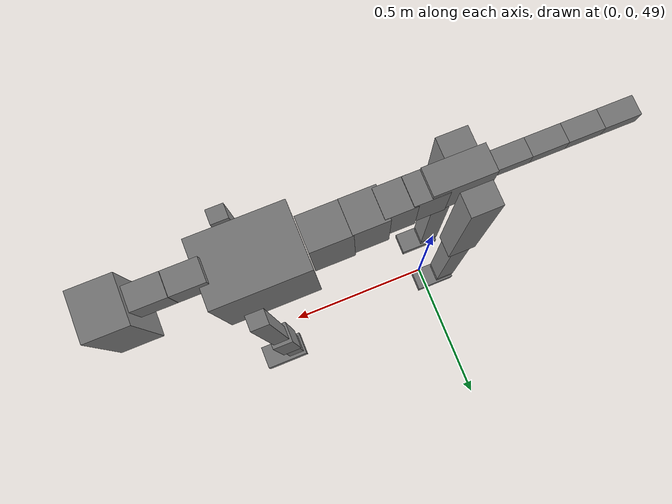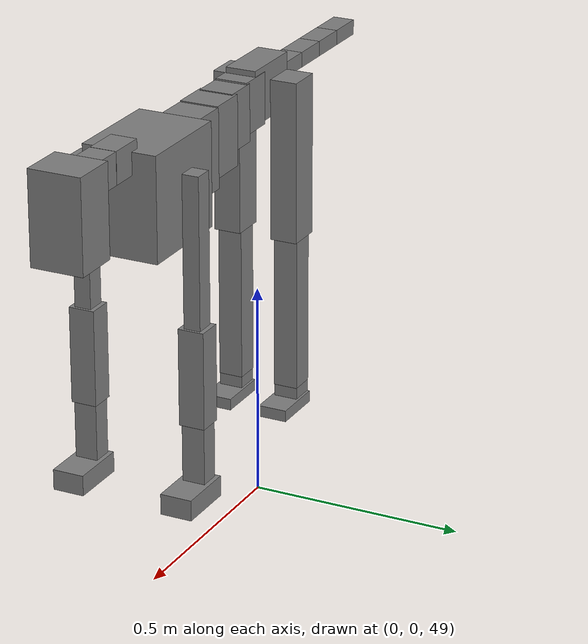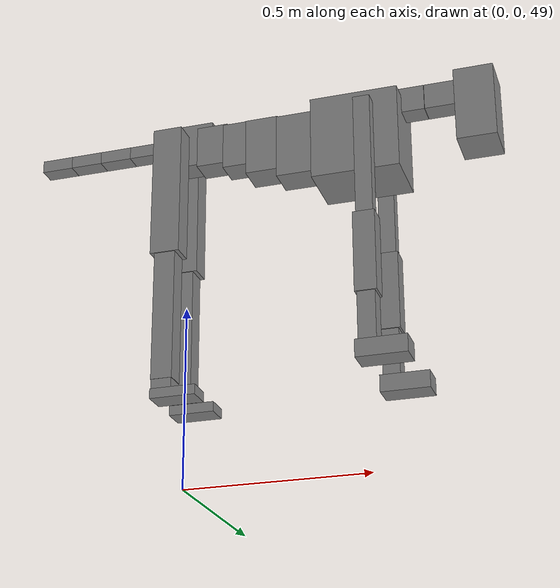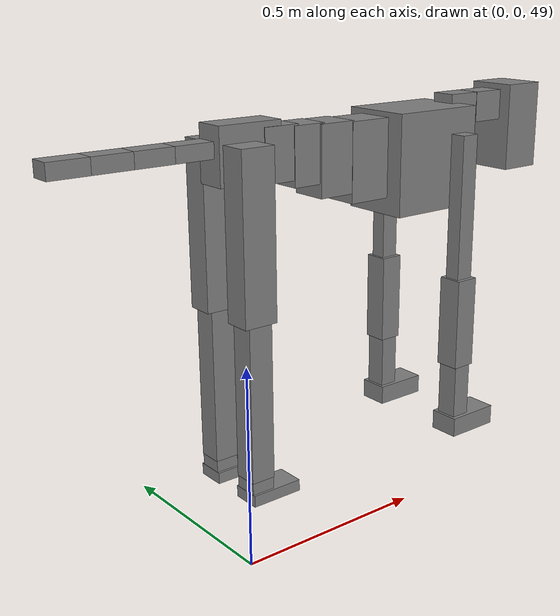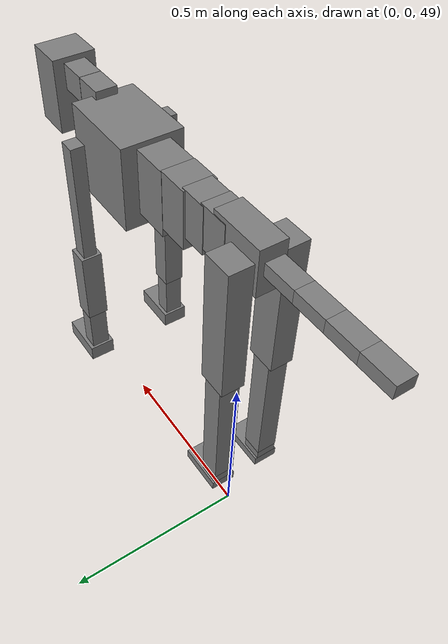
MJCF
<mujoco model="dog">

    <default>
        <joint armature="0.02" stiffness="1" damping="0.2" limited="true"/>
        <geom condim="3" friction="1 0.05 0.05" margin="0.01"/>
        <motor ctrllimited="true" ctrlrange="-1.0 1.0" forcelimited="true" gear="50"/>
    </default>

    <compiler inertiafromgeom="true" angle="radian"/>

    <option timestep="0.016" iterations="50" tolerance="1e-10" solver="Newton" jacobian="dense" cone="pyramidal"/>

    <size nconmax="20000" njmax="60000" nstack="5000000"/>
    <visual>
        <map force="0.1" zfar="30"/>
        <rgba haze="0.15 0.25 0.35 1"/>
        <quality shadowsize="2048"/>
        <global offwidth="800" offheight="800"/>
    </visual>

    <asset>
        <texture type="skybox" builtin="gradient" rgb1="0.3 0.5 0.7" rgb2="0 0 0" width="512" height="512"/>
        <texture name="texplane" type="2d" builtin="checker" rgb1=".2 .3 .4" rgb2=".1 0.15 0.2" width="512" height="512"
                 mark="cross" markrgb=".8 .8 .8"/>
        <texture name="texgeom" type="cube" builtin="flat" mark="cross" width="127" height="1278" rgb1="0.8 0.6 0.4"
                 rgb2="0.8 0.6 0.4" markrgb="1 1 1" random="0.01"/>

        <material name="matplane" reflectance="0.3" texture="texplane" texrepeat="1 1" texuniform="true"/>
        <material name="matgeom" texture="texgeom" texuniform="true" rgba="0.8 0.6 .4 1"/>
    </asset>

    <worldbody>
        <geom name="floor" pos="0 0 0" size="0 0 .25" type="plane" material="matplane" condim="3"/>

        <light directional="false" diffuse=".2 .2 .2" specular="0 0 0" pos="0 0 5" dir="0 0 -1" castshadow="false"/>
        <light mode="targetbodycom" target="torso" directional="false" diffuse=".8 .8 .8" specular="0.3 0.3 0.3"
               pos="0 0 4.0" dir="0 0 -1"/>

        <body name="root" pos="0 0 50">
            <freejoint name="root_1"/>
            <geom type="box" pos="0 0 -0.02" size="0.0774  0.0358  0.063" density="2030"/>

            <body name="spine1" pos="0.054 0 0">
                <joint name="spine1_y" axis="0 1 0" range="0 0.7" limited="true"/>
                <geom type="box" pos="0.02375 0 -0.03" size="0.04375  0.0375  0.05985" density="2030"/>

                <body name="spine2" pos="0.0612 0 0">
                    <joint name="spine2_y" axis="0 1 0" range="-0.15 0.15" limited="true"/>
                    <geom type="box" pos="0.03555  0  -0.04" size="0.04055  0.039  0.06615" density="2030"/>

                    <body name="spine3" pos="0.0730 0 0">
                        <joint name="spine3_y" axis="0 1 0" range="-0.15 0.15" limited="true"/>
                        <geom type="box" pos="0.03555  0  -0.057" size="0.04555  0.0445  0.081" density="2030"/>

                        <body name="spine4" pos="0.0780 0 0">
                            <joint name="spine4_y" axis="0 1 0" range="-0.15 0.15" limited="true"/>
                            <geom type="box" pos="0.05265  0  -0.07" size="0.05265  0.045  0.09135" density="2030"/>

                            <body name="torso" pos="0.1082 0 0">
                                <joint name="torso_y" axis="0 1 0" range="-0.15 0.15" limited="true"/>
                                <geom type="box" pos="0.11925  0  -0.085" size="0.11925  0.085  0.11745"
                                      density="2030"/>

                                <body name="neck1" pos="0.2160  0   0.0180">
                                    <joint name="neck1_y" axis="0 1 0" range="-1.2  -1" limited="true"/>
                                    <geom type="box" pos="0.0423  0  0" size="0.0423  0.03  0.036" density="2325"/>

                                    <body name="neck2" pos="0.0853  0  0">
                                        <joint name="neck2_y" axis="0 1 0" range="0.1  0" limited="true"/>
                                        <geom type="box" pos="0.0423  0  0" size="0.0423  0.03  0.036" density="2325"/>

                                        <body name="head" pos="0.0853  0  0">
                                            <joint name="head_y" axis="0 1 0" range="-0.3  -0.2" limited="true"/>
                                            <geom type="box" pos="0.0531  0  -0.055" size="0.0531  0.06  0.1044"
                                                  density="4030"/>

                                        </body>
                                    </body>
                                </body>

                                <body name="front_shoulder" pos="0.156  0   -0.0480">
                                    <joint name="front_shoulder_y" axis="0 1 0" range="-1 1.5" limited="true"/>
                                    <geom type="box" pos="0 0.13 -0.1570" size="0.0223  0.0190  0.1836" density="1158"/>
                                    <geom type="box" pos="0 -0.13 -0.1570" size="0.0223  0.0190  0.1836"
                                          density="1158"/>

                                    <body name="front_elbow" pos="0  0  -0.3139">
                                        <joint name="front_elbow_y" axis="0 1 0" range="-2 0" limited="true"/>
                                        <geom type="box" pos="0 0.13 -0.1096" size="0.0288  0.0294  0.1096"
                                              density="1081"/>
                                        <geom type="box" pos="0 -0.13 -0.1096" size="0.0288  0.0294  0.1096"
                                              density="1081"/>

                                        <body name="front_wrist" pos="0  0  -0.2191">
                                            <joint name="front_wrist_y" axis="0 1 0" range="-0.2 0" limited="true"/>
                                            <geom type="box" pos="0 0.13 -0.0725" size="0.0234  0.0260  0.0857"
                                                  density="1664"/>
                                            <geom type="box" pos="0 -0.13 -0.0725" size="0.0234  0.0260  0.0857"
                                                  density="1664"/>

                                            <body name="front_finger_end" pos="0  0  -0.1451">
                                                <joint name="front_finger_y" axis="0 1 0" range="-0.4 1"
                                                       limited="true"/>
                                                <geom type="box" pos="0.0362  0.13  -0.0084"
                                                      size="0.0664  0.0362  0.0234" density="1515"/>
                                                <geom type="box" pos="0.0362  -0.13  -0.0084"
                                                      size="0.0664  0.0362  0.0234" density="1515"/>

                                            </body>

                                        </body>
                                    </body>
                                </body>

                            </body>
                        </body>
                    </body>
                </body>
            </body>

            <body name="back_hip" pos="-0.03 0 -0.018">
                <joint name="back_hip_y" axis="0 1 0" range="-1.5 0.3" limited="true"/>
                <geom type="box" pos="0 0.07 -0.1644" size="0.0405  0.0317  0.1872" density="1154"/>
                <geom type="box" pos="0 -0.07 -0.1644" size="0.0405  0.0317  0.1872" density="1154"/>

                <body name="back_knee" pos="0  0  -0.3288">
                    <joint name="back_knee_y" axis="0 1 0" range="0 2.8" limited="true"/>
                    <geom type="box" pos="0 0.07 -0.1827" size="0.0289  0.0284  0.1983" density="1227"/>
                    <geom type="box" pos="0 -0.07 -0.1827" size="0.0289  0.0284  0.1983" density="1227"/>

                    <body name="back_ankle" pos="0  0  -0.3655">
                        <joint name="back_ankle_y" axis="0 1 0" range="-2.2 0" limited="true"/>
                        <geom type="box" pos="0 0.07 -0.0290" size="0.0278  0.0278  0.0403" density="1284"/>
                        <geom type="box" pos="0 -0.07 -0.0290" size="0.0278  0.0278  0.0403" density="1284"/>

                        <body name="back_toe_end" pos="0  0  -0.0581">
                            <joint name="back_toe_y" axis="0 1 0" range="-0.4 1" limited="true"/>
                            <geom type="box" pos="0.0336  0.07  0.0016" size="0.0616  0.0336  0.0134" density="1515"/>
                            <geom type="box" pos="0.0336  -0.07  0.0016" size="0.0616  0.0336  0.0134" density="1515"/>

                        </body>
                    </body>
                </body>
            </body>

            <body name="tail1" pos="-0.074 0 -0.006">
                <joint name="tail1_y" axis="0 1 0" range="-0.2 0.2" limited="true"/>
                <geom type="box" pos="-0.0536  0  0" size="0.045  0.025  0.0175" density="1587"/>

                <body name="tail2" pos="-0.09 0 0">
                    <joint name="tail2_y" axis="0 1 0" range="-0.2 0.2" limited="true"/>
                    <geom type="box" pos="-0.0536  0  0" size="0.045  0.025  0.0175" density="1587"/>

                    <body name="tail3" pos="-0.09 0 0">
                        <joint name="tail3_y" axis="0 1 0" range="-0.2 0.2" limited="true"/>
                        <geom type="box" pos="-0.0536  0  0" size="0.045  0.025  0.0175" density="1587"/>

                        <body name="tail4" pos="-0.09 0 0">
                            <joint name="tail4_y" axis="0 1 0" range="-0.2 0.2" limited="true"/>
                            <geom type="box" pos="-0.0536  0  0" size="0.045  0.025  0.0175" density="1587"/>

                        </body>
                    </body>
                </body>
            </body>
        </body>
    </worldbody>

    <actuator>
        <motor joint="spine1_y" forcerange="-150 150     "/>
        <motor joint="spine2_y" forcerange="-150 150     "/>
        <motor joint="spine3_y" forcerange="-150 150     "/>
        <motor joint="spine4_y" forcerange="-150 150     "/>
        <motor joint="torso_y" forcerange="-150 150     "/>
        <motor joint="neck1_y" forcerange="-100 100       "/>
        <motor joint="neck2_y" forcerange="-100 100       "/>
        <motor joint="head_y" forcerange="-150 150       "/>
        <motor joint="front_shoulder_y" forcerange="-103.88 123.02"/>
        <motor joint="front_elbow_y" forcerange="-194.61 119.25"/>
        <motor joint="front_wrist_y" forcerange="-101.89 105.90"/>
        <motor joint="front_finger_y" forcerange="-65.82 87.37"/>
        <motor joint="back_hip_y" forcerange="-343.91 279.34"/>
        <motor joint="back_knee_y" forcerange="-379.39 234.29"/>
        <motor joint="back_angle_y" forcerange="-112.16 233.12"/>
        <motor joint="back_toe_y" forcerange="-117.53 71.14"/>
        <motor joint="tail1_y" forcerange="-50 50     "/>
        <motor joint="tail2_y" forcerange="-50 50     "/>
        <motor joint="tail3_y" forcerange="-50 50     "/>
        <motor joint="tail4_y" forcerange="-50 50     "/>
    </actuator>
</mujoco>
